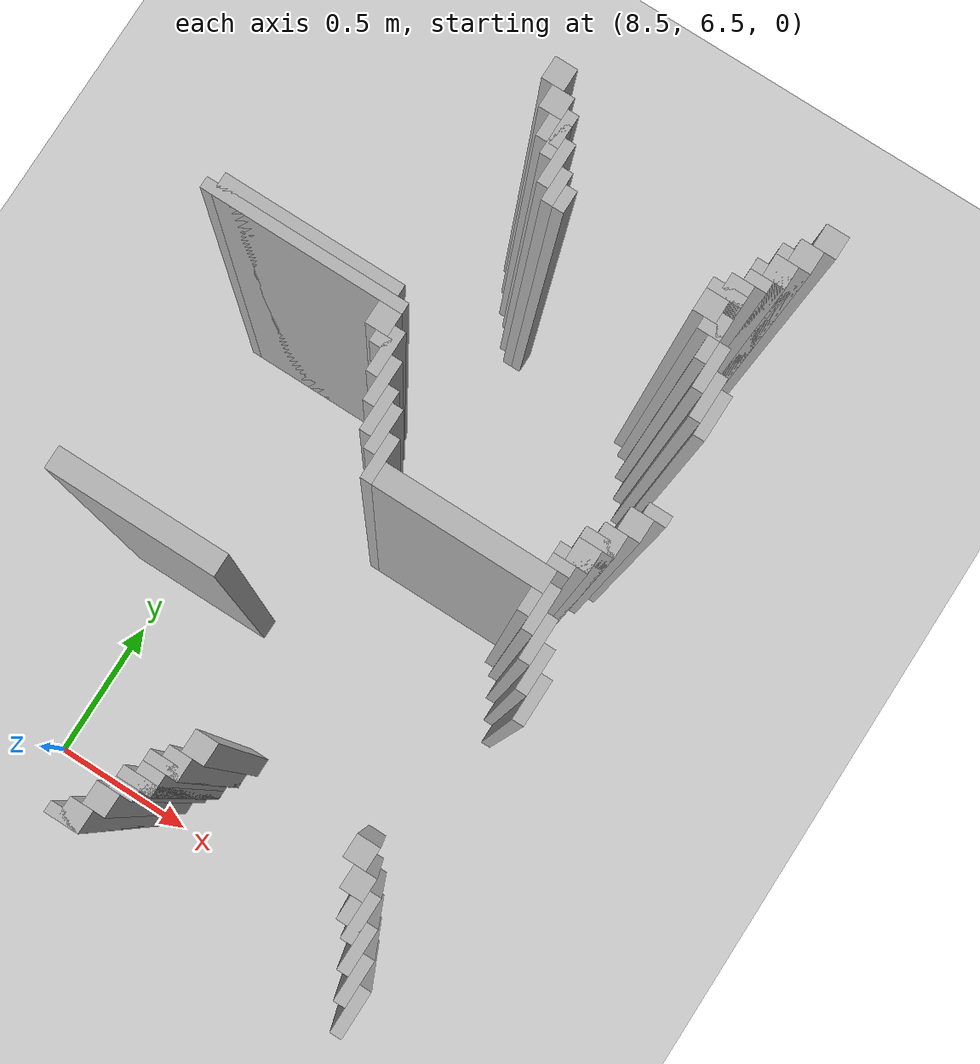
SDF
<sdf version="1.6">
 <world name="slam_world">
  <model name="ground_plane">
   <static>true</static>
   <link name="link">
    <collision name="collision">
     <geometry><plane><normal>0 0 1</normal><size>100 100</size></plane></geometry>
    </collision>
    <visual name="visual">
     <geometry><plane><normal>0 0 1</normal><size>100 100</size></plane></geometry>
     <material>
      <ambient>0.8 0.8 0.8 1</ambient>
      <diffuse>0.8 0.8 0.8 1</diffuse>
      <specular>0.8 0.8 0.8 1</specular>
     </material>
    </visual>
   </link>
  </model>
  <model name="wall_2876">
   <static>true</static>
   <pose>8.909512761020881 8.805104408352667 1.0 0 0 0</pose>
   <link name="link">
    <collision name="collision">
     <geometry><box><size>0.06960556844547564 0.06960556844547564 2.0</size></box></geometry>
    </collision>
    <visual name="visual">
     <geometry><box><size>0.06960556844547564 0.06960556844547564 2.0</size></box></geometry>
     <material><ambient>0.5 0.5 0.5 1</ambient><diffuse>0.7 0.7 0.7 1</diffuse></material>
    </visual>
   </link>
  </model>
  <model name="wall_2877">
   <static>true</static>
   <pose>9.744779582366588 8.805104408352667 1.0 0 0 0</pose>
   <link name="link">
    <collision name="collision">
     <geometry><box><size>0.06960556844547564 0.06960556844547564 2.0</size></box></geometry>
    </collision>
    <visual name="visual">
     <geometry><box><size>0.06960556844547564 0.06960556844547564 2.0</size></box></geometry>
     <material><ambient>0.5 0.5 0.5 1</ambient><diffuse>0.7 0.7 0.7 1</diffuse></material>
    </visual>
   </link>
  </model>
  <model name="wall_2889">
   <static>true</static>
   <pose>8.944315545243619 8.735498839907192 1.0 0 0 0</pose>
   <link name="link">
    <collision name="collision">
     <geometry><box><size>0.06960556844547564 0.06960556844547564 2.0</size></box></geometry>
    </collision>
    <visual name="visual">
     <geometry><box><size>0.06960556844547564 0.06960556844547564 2.0</size></box></geometry>
     <material><ambient>0.5 0.5 0.5 1</ambient><diffuse>0.7 0.7 0.7 1</diffuse></material>
    </visual>
   </link>
  </model>
  <model name="wall_2890">
   <static>true</static>
   <pose>9.70997679814385 8.735498839907192 1.0 0 0 0</pose>
   <link name="link">
    <collision name="collision">
     <geometry><box><size>0.06960556844547564 0.06960556844547564 2.0</size></box></geometry>
    </collision>
    <visual name="visual">
     <geometry><box><size>0.06960556844547564 0.06960556844547564 2.0</size></box></geometry>
     <material><ambient>0.5 0.5 0.5 1</ambient><diffuse>0.7 0.7 0.7 1</diffuse></material>
    </visual>
   </link>
  </model>
  <model name="wall_2902">
   <static>true</static>
   <pose>8.996519721577727 8.665893271461716 1.0 0 0 0</pose>
   <link name="link">
    <collision name="collision">
     <geometry><box><size>0.03480278422273782 0.13921113689095127 2.0</size></box></geometry>
    </collision>
    <visual name="visual">
     <geometry><box><size>0.03480278422273782 0.13921113689095127 2.0</size></box></geometry>
     <material><ambient>0.5 0.5 0.5 1</ambient><diffuse>0.7 0.7 0.7 1</diffuse></material>
    </visual>
   </link>
  </model>
  <model name="wall_2903">
   <static>true</static>
   <pose>9.692575406032482 8.718097447795824 1.0 0 0 0</pose>
   <link name="link">
    <collision name="collision">
     <geometry><box><size>0.10440835266821345 0.03480278422273782 2.0</size></box></geometry>
    </collision>
    <visual name="visual">
     <geometry><box><size>0.10440835266821345 0.03480278422273782 2.0</size></box></geometry>
     <material><ambient>0.5 0.5 0.5 1</ambient><diffuse>0.7 0.7 0.7 1</diffuse></material>
    </visual>
   </link>
  </model>
  <model name="wall_2911">
   <static>true</static>
   <pose>8.979118329466356 8.665893271461716 1.0 0 0 0</pose>
   <link name="link">
    <collision name="collision">
     <geometry><box><size>0.06960556844547564 0.06960556844547564 2.0</size></box></geometry>
    </collision>
    <visual name="visual">
     <geometry><box><size>0.06960556844547564 0.06960556844547564 2.0</size></box></geometry>
     <material><ambient>0.5 0.5 0.5 1</ambient><diffuse>0.7 0.7 0.7 1</diffuse></material>
    </visual>
   </link>
  </model>
  <model name="wall_2912">
   <static>true</static>
   <pose>9.675174013921113 8.665893271461716 1.0 0 0 0</pose>
   <link name="link">
    <collision name="collision">
     <geometry><box><size>0.06960556844547564 0.06960556844547564 2.0</size></box></geometry>
    </collision>
    <visual name="visual">
     <geometry><box><size>0.06960556844547564 0.06960556844547564 2.0</size></box></geometry>
     <material><ambient>0.5 0.5 0.5 1</ambient><diffuse>0.7 0.7 0.7 1</diffuse></material>
    </visual>
   </link>
  </model>
  <model name="wall_2924">
   <static>true</static>
   <pose>9.031322505800464 8.596287703016241 1.0 0 0 0</pose>
   <link name="link">
    <collision name="collision">
     <geometry><box><size>0.03480278422273782 0.13921113689095127 2.0</size></box></geometry>
    </collision>
    <visual name="visual">
     <geometry><box><size>0.03480278422273782 0.13921113689095127 2.0</size></box></geometry>
     <material><ambient>0.5 0.5 0.5 1</ambient><diffuse>0.7 0.7 0.7 1</diffuse></material>
    </visual>
   </link>
  </model>
  <model name="wall_2925">
   <static>true</static>
   <pose>9.657772621809745 8.648491879350347 1.0 0 0 0</pose>
   <link name="link">
    <collision name="collision">
     <geometry><box><size>0.10440835266821345 0.03480278422273782 2.0</size></box></geometry>
    </collision>
    <visual name="visual">
     <geometry><box><size>0.10440835266821345 0.03480278422273782 2.0</size></box></geometry>
     <material><ambient>0.5 0.5 0.5 1</ambient><diffuse>0.7 0.7 0.7 1</diffuse></material>
    </visual>
   </link>
  </model>
  <model name="wall_2933">
   <static>true</static>
   <pose>9.640371229698376 8.61368909512761 1.0 0 0 0</pose>
   <link name="link">
    <collision name="collision">
     <geometry><box><size>0.06960556844547564 0.03480278422273782 2.0</size></box></geometry>
    </collision>
    <visual name="visual">
     <geometry><box><size>0.06960556844547564 0.03480278422273782 2.0</size></box></geometry>
     <material><ambient>0.5 0.5 0.5 1</ambient><diffuse>0.7 0.7 0.7 1</diffuse></material>
    </visual>
   </link>
  </model>
  <model name="wall_2943">
   <static>true</static>
   <pose>9.066125290023201 8.544083526682135 1.0 0 0 0</pose>
   <link name="link">
    <collision name="collision">
     <geometry><box><size>0.03480278422273782 0.10440835266821345 2.0</size></box></geometry>
    </collision>
    <visual name="visual">
     <geometry><box><size>0.03480278422273782 0.10440835266821345 2.0</size></box></geometry>
     <material><ambient>0.5 0.5 0.5 1</ambient><diffuse>0.7 0.7 0.7 1</diffuse></material>
    </visual>
   </link>
  </model>
  <model name="wall_2944">
   <static>true</static>
   <pose>9.605568445475638 8.561484918793504 1.0 0 0 0</pose>
   <link name="link">
    <collision name="collision">
     <geometry><box><size>0.06960556844547564 0.06960556844547564 2.0</size></box></geometry>
    </collision>
    <visual name="visual">
     <geometry><box><size>0.06960556844547564 0.06960556844547564 2.0</size></box></geometry>
     <material><ambient>0.5 0.5 0.5 1</ambient><diffuse>0.7 0.7 0.7 1</diffuse></material>
    </visual>
   </link>
  </model>
  <model name="wall_2956">
   <static>true</static>
   <pose>9.100928074245939 8.526682134570766 1.0 0 0 0</pose>
   <link name="link">
    <collision name="collision">
     <geometry><box><size>0.03480278422273782 0.06960556844547564 2.0</size></box></geometry>
    </collision>
    <visual name="visual">
     <geometry><box><size>0.03480278422273782 0.06960556844547564 2.0</size></box></geometry>
     <material><ambient>0.5 0.5 0.5 1</ambient><diffuse>0.7 0.7 0.7 1</diffuse></material>
    </visual>
   </link>
  </model>
  <model name="wall_2957">
   <static>true</static>
   <pose>9.588167053364268 8.544083526682135 1.0 0 0 0</pose>
   <link name="link">
    <collision name="collision">
     <geometry><box><size>0.10440835266821345 0.03480278422273782 2.0</size></box></geometry>
    </collision>
    <visual name="visual">
     <geometry><box><size>0.10440835266821345 0.03480278422273782 2.0</size></box></geometry>
     <material><ambient>0.5 0.5 0.5 1</ambient><diffuse>0.7 0.7 0.7 1</diffuse></material>
    </visual>
   </link>
  </model>
  <model name="wall_2968">
   <static>true</static>
   <pose>9.5707656612529 8.491879350348027 1.0 0 0 0</pose>
   <link name="link">
    <collision name="collision">
     <geometry><box><size>0.06960556844547564 0.06960556844547564 2.0</size></box></geometry>
    </collision>
    <visual name="visual">
     <geometry><box><size>0.06960556844547564 0.06960556844547564 2.0</size></box></geometry>
     <material><ambient>0.5 0.5 0.5 1</ambient><diffuse>0.7 0.7 0.7 1</diffuse></material>
    </visual>
   </link>
  </model>
  <model name="wall_2981">
   <static>true</static>
   <pose>9.622969837587007 8.422273781902552 1.0 0 0 0</pose>
   <link name="link">
    <collision name="collision">
     <geometry><box><size>0.03480278422273782 0.13921113689095127 2.0</size></box></geometry>
    </collision>
    <visual name="visual">
     <geometry><box><size>0.03480278422273782 0.13921113689095127 2.0</size></box></geometry>
     <material><ambient>0.5 0.5 0.5 1</ambient><diffuse>0.7 0.7 0.7 1</diffuse></material>
    </visual>
   </link>
  </model>
  <model name="wall_2995">
   <static>true</static>
   <pose>9.605568445475638 8.43967517401392 1.0 0 0 0</pose>
   <link name="link">
    <collision name="collision">
     <geometry><box><size>0.06960556844547564 0.03480278422273782 2.0</size></box></geometry>
    </collision>
    <visual name="visual">
     <geometry><box><size>0.06960556844547564 0.03480278422273782 2.0</size></box></geometry>
     <material><ambient>0.5 0.5 0.5 1</ambient><diffuse>0.7 0.7 0.7 1</diffuse></material>
    </visual>
   </link>
  </model>
  <model name="wall_3010">
   <static>true</static>
   <pose>9.657772621809745 8.352668213457076 1.0 0 0 0</pose>
   <link name="link">
    <collision name="collision">
     <geometry><box><size>0.03480278422273782 0.13921113689095127 2.0</size></box></geometry>
    </collision>
    <visual name="visual">
     <geometry><box><size>0.03480278422273782 0.13921113689095127 2.0</size></box></geometry>
     <material><ambient>0.5 0.5 0.5 1</ambient><diffuse>0.7 0.7 0.7 1</diffuse></material>
    </visual>
   </link>
  </model>
  <model name="wall_3025">
   <static>true</static>
   <pose>9.692575406032482 8.2830626450116 1.0 0 0 0</pose>
   <link name="link">
    <collision name="collision">
     <geometry><box><size>0.03480278422273782 0.13921113689095127 2.0</size></box></geometry>
    </collision>
    <visual name="visual">
     <geometry><box><size>0.03480278422273782 0.13921113689095127 2.0</size></box></geometry>
     <material><ambient>0.5 0.5 0.5 1</ambient><diffuse>0.7 0.7 0.7 1</diffuse></material>
    </visual>
   </link>
  </model>
  <model name="wall_3040">
   <static>true</static>
   <pose>9.72737819025522 8.248259860788863 1.0 0 0 0</pose>
   <link name="link">
    <collision name="collision">
     <geometry><box><size>0.03480278422273782 0.13921113689095127 2.0</size></box></geometry>
    </collision>
    <visual name="visual">
     <geometry><box><size>0.03480278422273782 0.13921113689095127 2.0</size></box></geometry>
     <material><ambient>0.5 0.5 0.5 1</ambient><diffuse>0.7 0.7 0.7 1</diffuse></material>
    </visual>
   </link>
  </model>
  <model name="wall_3115">
   <static>true</static>
   <pose>8.596287703016241 8.074245939675174 1.0 0 0 0</pose>
   <link name="link">
    <collision name="collision">
     <geometry><box><size>0.5568445475638051 0.06960556844547564 2.0</size></box></geometry>
    </collision>
    <visual name="visual">
     <geometry><box><size>0.5568445475638051 0.06960556844547564 2.0</size></box></geometry>
     <material><ambient>0.5 0.5 0.5 1</ambient><diffuse>0.7 0.7 0.7 1</diffuse></material>
    </visual>
   </link>
  </model>
  <model name="wall_3128">
   <static>true</static>
   <pose>8.596287703016241 8.056844547563804 1.0 0 0 0</pose>
   <link name="link">
    <collision name="collision">
     <geometry><box><size>0.6264501160092807 0.03480278422273782 2.0</size></box></geometry>
    </collision>
    <visual name="visual">
     <geometry><box><size>0.6264501160092807 0.03480278422273782 2.0</size></box></geometry>
     <material><ambient>0.5 0.5 0.5 1</ambient><diffuse>0.7 0.7 0.7 1</diffuse></material>
    </visual>
   </link>
  </model>
  <model name="wall_3143">
   <static>true</static>
   <pose>8.874709976798144 8.004640371229698 1.0 0 0 0</pose>
   <link name="link">
    <collision name="collision">
     <geometry><box><size>0.06960556844547564 0.06960556844547564 2.0</size></box></geometry>
    </collision>
    <visual name="visual">
     <geometry><box><size>0.06960556844547564 0.06960556844547564 2.0</size></box></geometry>
     <material><ambient>0.5 0.5 0.5 1</ambient><diffuse>0.7 0.7 0.7 1</diffuse></material>
    </visual>
   </link>
  </model>
  <model name="wall_3159">
   <static>true</static>
   <pose>8.92691415313225 7.935034802784222 1.0 0 0 0</pose>
   <link name="link">
    <collision name="collision">
     <geometry><box><size>0.03480278422273782 0.13921113689095127 2.0</size></box></geometry>
    </collision>
    <visual name="visual">
     <geometry><box><size>0.03480278422273782 0.13921113689095127 2.0</size></box></geometry>
     <material><ambient>0.5 0.5 0.5 1</ambient><diffuse>0.7 0.7 0.7 1</diffuse></material>
    </visual>
   </link>
  </model>
  <model name="wall_3172">
   <static>true</static>
   <pose>8.909512761020881 7.952436194895592 1.0 0 0 0</pose>
   <link name="link">
    <collision name="collision">
     <geometry><box><size>0.06960556844547564 0.03480278422273782 2.0</size></box></geometry>
    </collision>
    <visual name="visual">
     <geometry><box><size>0.06960556844547564 0.03480278422273782 2.0</size></box></geometry>
     <material><ambient>0.5 0.5 0.5 1</ambient><diffuse>0.7 0.7 0.7 1</diffuse></material>
    </visual>
   </link>
  </model>
  <model name="wall_3173">
   <static>true</static>
   <pose>9.744779582366588 7.952436194895592 1.0 0 0 0</pose>
   <link name="link">
    <collision name="collision">
     <geometry><box><size>0.06960556844547564 0.03480278422273782 2.0</size></box></geometry>
    </collision>
    <visual name="visual">
     <geometry><box><size>0.06960556844547564 0.03480278422273782 2.0</size></box></geometry>
     <material><ambient>0.5 0.5 0.5 1</ambient><diffuse>0.7 0.7 0.7 1</diffuse></material>
    </visual>
   </link>
  </model>
  <model name="wall_3186">
   <static>true</static>
   <pose>8.961716937354987 7.865429234338746 1.0 0 0 0</pose>
   <link name="link">
    <collision name="collision">
     <geometry><box><size>0.03480278422273782 0.13921113689095127 2.0</size></box></geometry>
    </collision>
    <visual name="visual">
     <geometry><box><size>0.03480278422273782 0.13921113689095127 2.0</size></box></geometry>
     <material><ambient>0.5 0.5 0.5 1</ambient><diffuse>0.7 0.7 0.7 1</diffuse></material>
    </visual>
   </link>
  </model>
  <model name="wall_3187">
   <static>true</static>
   <pose>9.70997679814385 7.900232018561485 1.0 0 0 0</pose>
   <link name="link">
    <collision name="collision">
     <geometry><box><size>0.06960556844547564 0.06960556844547564 2.0</size></box></geometry>
    </collision>
    <visual name="visual">
     <geometry><box><size>0.06960556844547564 0.06960556844547564 2.0</size></box></geometry>
     <material><ambient>0.5 0.5 0.5 1</ambient><diffuse>0.7 0.7 0.7 1</diffuse></material>
    </visual>
   </link>
  </model>
  <model name="wall_3202">
   <static>true</static>
   <pose>8.996519721577727 7.795823665893272 1.0 0 0 0</pose>
   <link name="link">
    <collision name="collision">
     <geometry><box><size>0.03480278422273782 0.13921113689095127 2.0</size></box></geometry>
    </collision>
    <visual name="visual">
     <geometry><box><size>0.03480278422273782 0.13921113689095127 2.0</size></box></geometry>
     <material><ambient>0.5 0.5 0.5 1</ambient><diffuse>0.7 0.7 0.7 1</diffuse></material>
    </visual>
   </link>
  </model>
  <model name="wall_3203">
   <static>true</static>
   <pose>9.675174013921113 7.830626450116009 1.0 0 0 0</pose>
   <link name="link">
    <collision name="collision">
     <geometry><box><size>0.06960556844547564 0.06960556844547564 2.0</size></box></geometry>
    </collision>
    <visual name="visual">
     <geometry><box><size>0.06960556844547564 0.06960556844547564 2.0</size></box></geometry>
     <material><ambient>0.5 0.5 0.5 1</ambient><diffuse>0.7 0.7 0.7 1</diffuse></material>
    </visual>
   </link>
  </model>
  <model name="wall_3218">
   <static>true</static>
   <pose>9.031322505800464 7.761020881670533 1.0 0 0 0</pose>
   <link name="link">
    <collision name="collision">
     <geometry><box><size>0.03480278422273782 0.13921113689095127 2.0</size></box></geometry>
    </collision>
    <visual name="visual">
     <geometry><box><size>0.03480278422273782 0.13921113689095127 2.0</size></box></geometry>
     <material><ambient>0.5 0.5 0.5 1</ambient><diffuse>0.7 0.7 0.7 1</diffuse></material>
    </visual>
   </link>
  </model>
  <model name="wall_3219">
   <static>true</static>
   <pose>9.657772621809745 7.81322505800464 1.0 0 0 0</pose>
   <link name="link">
    <collision name="collision">
     <geometry><box><size>0.10440835266821345 0.03480278422273782 2.0</size></box></geometry>
    </collision>
    <visual name="visual">
     <geometry><box><size>0.10440835266821345 0.03480278422273782 2.0</size></box></geometry>
     <material><ambient>0.5 0.5 0.5 1</ambient><diffuse>0.7 0.7 0.7 1</diffuse></material>
    </visual>
   </link>
  </model>
  <model name="wall_3231">
   <static>true</static>
   <pose>9.640371229698376 7.761020881670533 1.0 0 0 0</pose>
   <link name="link">
    <collision name="collision">
     <geometry><box><size>0.06960556844547564 0.06960556844547564 2.0</size></box></geometry>
    </collision>
    <visual name="visual">
     <geometry><box><size>0.06960556844547564 0.06960556844547564 2.0</size></box></geometry>
     <material><ambient>0.5 0.5 0.5 1</ambient><diffuse>0.7 0.7 0.7 1</diffuse></material>
    </visual>
   </link>
  </model>
  <model name="wall_3243">
   <static>true</static>
   <pose>9.066125290023201 7.691415313225058 1.0 0 0 0</pose>
   <link name="link">
    <collision name="collision">
     <geometry><box><size>0.03480278422273782 0.13921113689095127 2.0</size></box></geometry>
    </collision>
    <visual name="visual">
     <geometry><box><size>0.03480278422273782 0.13921113689095127 2.0</size></box></geometry>
     <material><ambient>0.5 0.5 0.5 1</ambient><diffuse>0.7 0.7 0.7 1</diffuse></material>
    </visual>
   </link>
  </model>
  <model name="wall_3244">
   <static>true</static>
   <pose>9.622969837587007 7.743619489559165 1.0 0 0 0</pose>
   <link name="link">
    <collision name="collision">
     <geometry><box><size>0.10440835266821345 0.03480278422273782 2.0</size></box></geometry>
    </collision>
    <visual name="visual">
     <geometry><box><size>0.10440835266821345 0.03480278422273782 2.0</size></box></geometry>
     <material><ambient>0.5 0.5 0.5 1</ambient><diffuse>0.7 0.7 0.7 1</diffuse></material>
    </visual>
   </link>
  </model>
  <model name="wall_3256">
   <static>true</static>
   <pose>9.605568445475638 7.708816705336426 1.0 0 0 0</pose>
   <link name="link">
    <collision name="collision">
     <geometry><box><size>0.06960556844547564 0.03480278422273782 2.0</size></box></geometry>
    </collision>
    <visual name="visual">
     <geometry><box><size>0.06960556844547564 0.03480278422273782 2.0</size></box></geometry>
     <material><ambient>0.5 0.5 0.5 1</ambient><diffuse>0.7 0.7 0.7 1</diffuse></material>
    </visual>
   </link>
  </model>
  <model name="wall_3269">
   <static>true</static>
   <pose>9.344547563805104 7.65661252900232 1.0 0 0 0</pose>
   <link name="link">
    <collision name="collision">
     <geometry><box><size>0.5220417633410672 0.06960556844547564 2.0</size></box></geometry>
    </collision>
    <visual name="visual">
     <geometry><box><size>0.5220417633410672 0.06960556844547564 2.0</size></box></geometry>
     <material><ambient>0.5 0.5 0.5 1</ambient><diffuse>0.7 0.7 0.7 1</diffuse></material>
    </visual>
   </link>
  </model>
  <model name="wall_3285">
   <static>true</static>
   <pose>9.622969837587007 7.587006960556844 1.0 0 0 0</pose>
   <link name="link">
    <collision name="collision">
     <geometry><box><size>0.03480278422273782 0.13921113689095127 2.0</size></box></geometry>
    </collision>
    <visual name="visual">
     <geometry><box><size>0.03480278422273782 0.13921113689095127 2.0</size></box></geometry>
     <material><ambient>0.5 0.5 0.5 1</ambient><diffuse>0.7 0.7 0.7 1</diffuse></material>
    </visual>
   </link>
  </model>
  <model name="wall_3300">
   <static>true</static>
   <pose>9.605568445475638 7.587006960556844 1.0 0 0 0</pose>
   <link name="link">
    <collision name="collision">
     <geometry><box><size>0.06960556844547564 0.06960556844547564 2.0</size></box></geometry>
    </collision>
    <visual name="visual">
     <geometry><box><size>0.06960556844547564 0.06960556844547564 2.0</size></box></geometry>
     <material><ambient>0.5 0.5 0.5 1</ambient><diffuse>0.7 0.7 0.7 1</diffuse></material>
    </visual>
   </link>
  </model>
  <model name="wall_3316">
   <static>true</static>
   <pose>9.657772621809745 7.517401392111369 1.0 0 0 0</pose>
   <link name="link">
    <collision name="collision">
     <geometry><box><size>0.03480278422273782 0.13921113689095127 2.0</size></box></geometry>
    </collision>
    <visual name="visual">
     <geometry><box><size>0.03480278422273782 0.13921113689095127 2.0</size></box></geometry>
     <material><ambient>0.5 0.5 0.5 1</ambient><diffuse>0.7 0.7 0.7 1</diffuse></material>
    </visual>
   </link>
  </model>
  <model name="wall_3343">
   <static>true</static>
   <pose>9.692575406032482 7.447795823665893 1.0 0 0 0</pose>
   <link name="link">
    <collision name="collision">
     <geometry><box><size>0.03480278422273782 0.13921113689095127 2.0</size></box></geometry>
    </collision>
    <visual name="visual">
     <geometry><box><size>0.03480278422273782 0.13921113689095127 2.0</size></box></geometry>
     <material><ambient>0.5 0.5 0.5 1</ambient><diffuse>0.7 0.7 0.7 1</diffuse></material>
    </visual>
   </link>
  </model>
  <model name="wall_3359">
   <static>true</static>
   <pose>9.72737819025522 7.378190255220417 1.0 0 0 0</pose>
   <link name="link">
    <collision name="collision">
     <geometry><box><size>0.03480278422273782 0.13921113689095127 2.0</size></box></geometry>
    </collision>
    <visual name="visual">
     <geometry><box><size>0.03480278422273782 0.13921113689095127 2.0</size></box></geometry>
     <material><ambient>0.5 0.5 0.5 1</ambient><diffuse>0.7 0.7 0.7 1</diffuse></material>
    </visual>
   </link>
  </model>
  <model name="wall_3421">
   <static>true</static>
   <pose>8.61368909512761 7.238979118329466 1.0 0 0 0</pose>
   <link name="link">
    <collision name="collision">
     <geometry><box><size>0.5220417633410672 0.06960556844547564 2.0</size></box></geometry>
    </collision>
    <visual name="visual">
     <geometry><box><size>0.5220417633410672 0.06960556844547564 2.0</size></box></geometry>
     <material><ambient>0.5 0.5 0.5 1</ambient><diffuse>0.7 0.7 0.7 1</diffuse></material>
    </visual>
   </link>
  </model>
  <model name="wall_3540">
   <static>true</static>
   <pose>9.08352668213457 6.821345707656612 1.0 0 0 0</pose>
   <link name="link">
    <collision name="collision">
     <geometry><box><size>0.06960556844547564 0.06960556844547564 2.0</size></box></geometry>
    </collision>
    <visual name="visual">
     <geometry><box><size>0.06960556844547564 0.06960556844547564 2.0</size></box></geometry>
     <material><ambient>0.5 0.5 0.5 1</ambient><diffuse>0.7 0.7 0.7 1</diffuse></material>
    </visual>
   </link>
  </model>
  <model name="wall_3541">
   <static>true</static>
   <pose>9.5707656612529 6.821345707656612 1.0 0 0 0</pose>
   <link name="link">
    <collision name="collision">
     <geometry><box><size>0.06960556844547564 0.06960556844547564 2.0</size></box></geometry>
    </collision>
    <visual name="visual">
     <geometry><box><size>0.06960556844547564 0.06960556844547564 2.0</size></box></geometry>
     <material><ambient>0.5 0.5 0.5 1</ambient><diffuse>0.7 0.7 0.7 1</diffuse></material>
    </visual>
   </link>
  </model>
  <model name="wall_3560">
   <static>true</static>
   <pose>9.048723897911833 6.751740139211137 1.0 0 0 0</pose>
   <link name="link">
    <collision name="collision">
     <geometry><box><size>0.06960556844547564 0.06960556844547564 2.0</size></box></geometry>
    </collision>
    <visual name="visual">
     <geometry><box><size>0.06960556844547564 0.06960556844547564 2.0</size></box></geometry>
     <material><ambient>0.5 0.5 0.5 1</ambient><diffuse>0.7 0.7 0.7 1</diffuse></material>
    </visual>
   </link>
  </model>
  <model name="wall_3561">
   <static>true</static>
   <pose>9.605568445475638 6.751740139211137 1.0 0 0 0</pose>
   <link name="link">
    <collision name="collision">
     <geometry><box><size>0.06960556844547564 0.06960556844547564 2.0</size></box></geometry>
    </collision>
    <visual name="visual">
     <geometry><box><size>0.06960556844547564 0.06960556844547564 2.0</size></box></geometry>
     <material><ambient>0.5 0.5 0.5 1</ambient><diffuse>0.7 0.7 0.7 1</diffuse></material>
    </visual>
   </link>
  </model>
  <model name="wall_3573">
   <static>true</static>
   <pose>9.031322505800464 6.734338747099768 1.0 0 0 0</pose>
   <link name="link">
    <collision name="collision">
     <geometry><box><size>0.10440835266821345 0.03480278422273782 2.0</size></box></geometry>
    </collision>
    <visual name="visual">
     <geometry><box><size>0.10440835266821345 0.03480278422273782 2.0</size></box></geometry>
     <material><ambient>0.5 0.5 0.5 1</ambient><diffuse>0.7 0.7 0.7 1</diffuse></material>
    </visual>
   </link>
  </model>
  <model name="wall_3574">
   <static>true</static>
   <pose>9.657772621809745 6.682134570765661 1.0 0 0 0</pose>
   <link name="link">
    <collision name="collision">
     <geometry><box><size>0.03480278422273782 0.13921113689095127 2.0</size></box></geometry>
    </collision>
    <visual name="visual">
     <geometry><box><size>0.03480278422273782 0.13921113689095127 2.0</size></box></geometry>
     <material><ambient>0.5 0.5 0.5 1</ambient><diffuse>0.7 0.7 0.7 1</diffuse></material>
    </visual>
   </link>
  </model>
  <model name="wall_3586">
   <static>true</static>
   <pose>9.013921113689095 6.682134570765661 1.0 0 0 0</pose>
   <link name="link">
    <collision name="collision">
     <geometry><box><size>0.06960556844547564 0.06960556844547564 2.0</size></box></geometry>
    </collision>
    <visual name="visual">
     <geometry><box><size>0.06960556844547564 0.06960556844547564 2.0</size></box></geometry>
     <material><ambient>0.5 0.5 0.5 1</ambient><diffuse>0.7 0.7 0.7 1</diffuse></material>
    </visual>
   </link>
  </model>
  <model name="wall_3587">
   <static>true</static>
   <pose>9.640371229698376 6.682134570765661 1.0 0 0 0</pose>
   <link name="link">
    <collision name="collision">
     <geometry><box><size>0.06960556844547564 0.06960556844547564 2.0</size></box></geometry>
    </collision>
    <visual name="visual">
     <geometry><box><size>0.06960556844547564 0.06960556844547564 2.0</size></box></geometry>
     <material><ambient>0.5 0.5 0.5 1</ambient><diffuse>0.7 0.7 0.7 1</diffuse></material>
    </visual>
   </link>
  </model>
  <model name="wall_3599">
   <static>true</static>
   <pose>8.996519721577727 6.664733178654292 1.0 0 0 0</pose>
   <link name="link">
    <collision name="collision">
     <geometry><box><size>0.10440835266821345 0.03480278422273782 2.0</size></box></geometry>
    </collision>
    <visual name="visual">
     <geometry><box><size>0.10440835266821345 0.03480278422273782 2.0</size></box></geometry>
     <material><ambient>0.5 0.5 0.5 1</ambient><diffuse>0.7 0.7 0.7 1</diffuse></material>
    </visual>
   </link>
  </model>
  <model name="wall_3600">
   <static>true</static>
   <pose>9.692575406032482 6.612529002320185 1.0 0 0 0</pose>
   <link name="link">
    <collision name="collision">
     <geometry><box><size>0.03480278422273782 0.13921113689095127 2.0</size></box></geometry>
    </collision>
    <visual name="visual">
     <geometry><box><size>0.03480278422273782 0.13921113689095127 2.0</size></box></geometry>
     <material><ambient>0.5 0.5 0.5 1</ambient><diffuse>0.7 0.7 0.7 1</diffuse></material>
    </visual>
   </link>
  </model>
  <model name="wall_3608">
   <static>true</static>
   <pose>8.979118329466356 6.629930394431554 1.0 0 0 0</pose>
   <link name="link">
    <collision name="collision">
     <geometry><box><size>0.06960556844547564 0.03480278422273782 2.0</size></box></geometry>
    </collision>
    <visual name="visual">
     <geometry><box><size>0.06960556844547564 0.03480278422273782 2.0</size></box></geometry>
     <material><ambient>0.5 0.5 0.5 1</ambient><diffuse>0.7 0.7 0.7 1</diffuse></material>
    </visual>
   </link>
  </model>
  <model name="wall_3619">
   <static>true</static>
   <pose>8.944315545243619 6.577726218097448 1.0 0 0 0</pose>
   <link name="link">
    <collision name="collision">
     <geometry><box><size>0.06960556844547564 0.06960556844547564 2.0</size></box></geometry>
    </collision>
    <visual name="visual">
     <geometry><box><size>0.06960556844547564 0.06960556844547564 2.0</size></box></geometry>
     <material><ambient>0.5 0.5 0.5 1</ambient><diffuse>0.7 0.7 0.7 1</diffuse></material>
    </visual>
   </link>
  </model>
  <model name="wall_3620">
   <static>true</static>
   <pose>9.72737819025522 6.5429234338747095 1.0 0 0 0</pose>
   <link name="link">
    <collision name="collision">
     <geometry><box><size>0.03480278422273782 0.13921113689095127 2.0</size></box></geometry>
    </collision>
    <visual name="visual">
     <geometry><box><size>0.03480278422273782 0.13921113689095127 2.0</size></box></geometry>
     <material><ambient>0.5 0.5 0.5 1</ambient><diffuse>0.7 0.7 0.7 1</diffuse></material>
    </visual>
   </link>
  </model>
  <model name="wall_3632">
   <static>true</static>
   <pose>8.909512761020881 6.508120649651972 1.0 0 0 0</pose>
   <link name="link">
    <collision name="collision">
     <geometry><box><size>0.06960556844547564 0.06960556844547564 2.0</size></box></geometry>
    </collision>
    <visual name="visual">
     <geometry><box><size>0.06960556844547564 0.06960556844547564 2.0</size></box></geometry>
     <material><ambient>0.5 0.5 0.5 1</ambient><diffuse>0.7 0.7 0.7 1</diffuse></material>
    </visual>
   </link>
  </model>
  <model name="wall_3633">
   <static>true</static>
   <pose>9.762180974477959 6.473317865429234 1.0 0 0 0</pose>
   <link name="link">
    <collision name="collision">
     <geometry><box><size>0.03480278422273782 0.13921113689095127 2.0</size></box></geometry>
    </collision>
    <visual name="visual">
     <geometry><box><size>0.03480278422273782 0.13921113689095127 2.0</size></box></geometry>
     <material><ambient>0.5 0.5 0.5 1</ambient><diffuse>0.7 0.7 0.7 1</diffuse></material>
    </visual>
   </link>
  </model>
  <model name="wall_3645">
   <static>true</static>
   <pose>8.892111368909513 6.490719257540603 1.0 0 0 0</pose>
   <link name="link">
    <collision name="collision">
     <geometry><box><size>0.10440835266821345 0.03480278422273782 2.0</size></box></geometry>
    </collision>
    <visual name="visual">
     <geometry><box><size>0.10440835266821345 0.03480278422273782 2.0</size></box></geometry>
     <material><ambient>0.5 0.5 0.5 1</ambient><diffuse>0.7 0.7 0.7 1</diffuse></material>
    </visual>
   </link>
  </model>
 </world>
</sdf>
